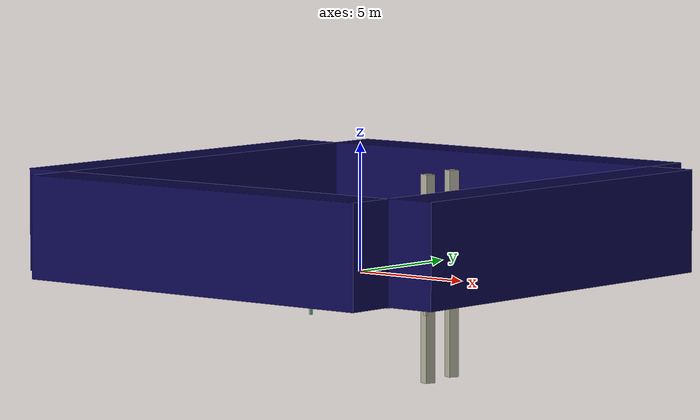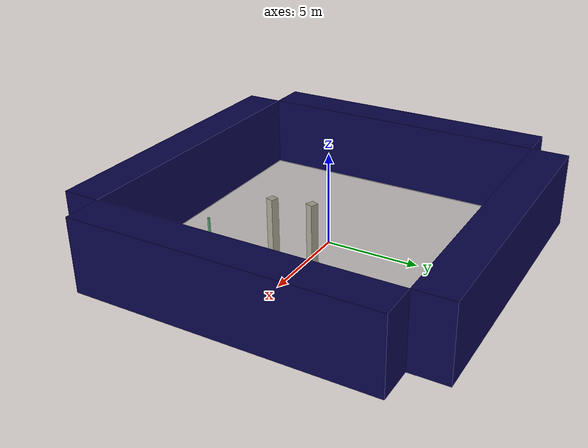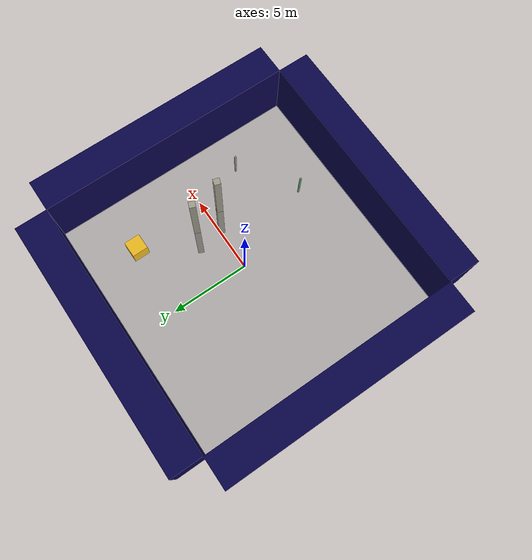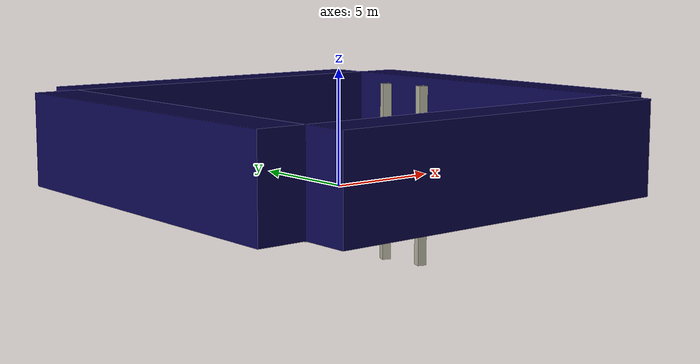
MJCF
<mujoco model="unnamed_model">
  <default>
    <default class="/" />
    <default class="border/" />
    <default class="border_1/" />
    <default class="border_2/" />
    <default class="border_3/" />
    <default class="light/" />
    <default class="agent/" />
    <default class="stone0/" />
    <default class="stone1/" />
    <default class="apple/" />
    <default class="apple_1/" />
  </default>
  <worldbody>
    <body name="border/">
      <body name="border/border" pos="0 9 2">
        <geom name="border/border_geom" class="border/" type="box" size="8.0 1.0 2.0" rgba="0.035 0.016 0.29 1.0" />
      </body>
    </body>
    <body name="border_1/">
      <body name="border_1/border" pos="0 -9 2">
        <geom name="border_1/border_geom" class="border_1/" type="box" size="8.0 1.0 2.0" rgba="0.035 0.016 0.29 1.0" />
      </body>
    </body>
    <body name="border_2/">
      <body name="border_2/border" pos="9 0 2">
        <geom name="border_2/border_geom" class="border_2/" type="box" size="1.0 8.0 2.0" rgba="0.035 0.016 0.29 1.0" />
      </body>
    </body>
    <body name="border_3/">
      <body name="border_3/border" pos="-9 0 2">
        <geom name="border_3/border_geom" class="border_3/" type="box" size="1.0 8.0 2.0" rgba="0.035 0.016 0.29 1.0" />
      </body>
    </body>
    <body name="light/">
      <body name="light/light" pos="0 0 15">
        <geom name="light/light_geom" class="light/" size="0.5" rgba="1.0 1.0 1.0 0.0" />
        <light name="light//unnamed_light_0" class="light/" />
      </body>
    </body>
    <body euler="0 0 270.53856175018899" name="agent/">
      <joint name="agent/boxagent_freeJoint/" class="/" type="free" />
      <body name="agent/agent" pos="-4.7671000000000001 4.5668000000000006 0.5" euler="0 0 0">
        <geom name="agent/boxagent_geom" class="agent/" type="box" size="0.5 0.5 0.5" rgba="0.949 0.7451 0.1333 1.0" euler="0 0 0" />
        <camera name="agent/boxagent_camera" class="agent/" pos="1 0 0.5" euler="90 0 0" />
      </body>
    </body>
    <body name="stone0/">
      <body name="stone0/stone0" pos="2.46435 -5.8554000000000004 0.10000000000000001" euler="0 0 -7.5245687409927484">
        <geom name="stone0/stone_geom" class="stone0/" type="box" size="0.05 0.05 1.0" rgba="0.396078431372549 0.6705882352941176 0.48627450980392156 1.0" />
      </body>
    </body>
    <body name="stone1/">
      <body name="stone1/stone1" pos="4.0164 -0.80839999999999979 0.10000000000000001" euler="0 0 72.028603931724604">
        <geom name="stone1/stone_geom" class="stone1/" type="box" size="0.2 0.2 4.0" rgba="0.6470588235294118 0.6392156862745098 0.5686274509803921 1.0" />
      </body>
    </body>
    <body name="apple/">
      <body name="apple/apple" pos="3.6308500000000001 1.1143000000000001 0.10000000000000001" euler="0 0 157.35857329148592">
        <geom name="apple/apple_geom" class="apple/" type="box" size="0.2 0.2 4.0" rgba="0.6470588235294118 0.6392156862745098 0.5686274509803921 1.0" />
      </body>
    </body>
    <body name="apple_1/">
      <body name="apple_1/apple" pos="5.9756 -3.3521999999999998 0.10000000000000001" euler="0 0 0.65823854415137362">
        <geom name="apple_1/apple_geom" class="apple_1/" type="box" size="0.05 0.05 1.0" rgba="0.6470588235294118 0.6392156862745098 0.5686274509803921 1.0" />
      </body>
    </body>
    <geom name="base_plane" class="/" type="plane" size="8 8 0.10000000000000001" />
  </worldbody>
</mujoco>
